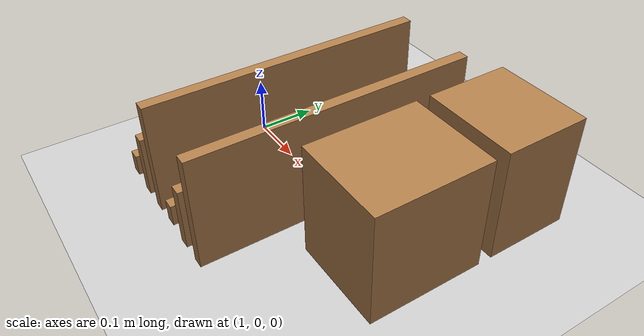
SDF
<sdf version="1.5">
 <world name="default">
  <plugin name="gazebo_ros_state" filename="libgazebo_ros_state.so">
   <ros>
    <namespace>/gazebo_state</namespace>
    <argument>--ros-args --remap model_states:=model_states_demo</argument>
    <argument>--ros-args --remap link_states:=link_states_demo</argument>
   </ros>
   <update_rate>50.0</update_rate>
  </plugin>
  <plugin name="ros_link_attacher_plugin" filename="libgazebo_ros_link_attacher_plugin.so"/>
  <light name="sun" type="directional">
   <pose>0 0 10 0 -0 0</pose>
   <diffuse>0.8 0.8 0.8 1</diffuse>
   <specular>0.2 0.2 0.2 1</specular>
   <attenuation>
    <range>1000</range>
    <constant>0.9</constant>
    <linear>0.01</linear>
    <quadratic>0.001</quadratic>
   </attenuation>
   <direction>-0.5 0.1 -0.9</direction>
   <spot><inner_angle>0</inner_angle><outer_angle>0</outer_angle><falloff>0</falloff></spot>
  </light>
  <model name="wall_0">
   <pose>1.0 0 .025 0 0 0</pose>
   <link name="link">
    <collision name="collision"><geometry><box><size>0.02 0.5 0.038</size></box></geometry></collision>
    <visual name="visual">
     <geometry><box><size>0.02 0.5 0.038</size></box></geometry>
     <material>
      <script><uri>file://media/materials/scripts/gazebo.material</uri><name>Gazebo/Wood</name></script>
     </material>
    </visual>
   </link>
  </model>
  <model name="wall_1">
   <pose>1.05 0 .05 0 0 0</pose>
   <link name="link">
    <collision name="collision"><geometry><box><size>0.02 0.5 0.119</size></box></geometry></collision>
    <visual name="visual">
     <geometry><box><size>0.02 0.5 0.119</size></box></geometry>
     <material>
      <script><uri>file://media/materials/scripts/gazebo.material</uri><name>Gazebo/Wood</name></script>
     </material>
    </visual>
   </link>
  </model>
  <model name="wall_2">
   <pose>1.1 0 .1 0 0 0</pose>
   <link name="link">
    <collision name="collision"><geometry><box><size>0.02 0.5 0.2</size></box></geometry></collision>
    <visual name="visual">
     <geometry><box><size>0.02 0.5 0.2</size></box></geometry>
     <material>
      <script><uri>file://media/materials/scripts/gazebo.material</uri><name>Gazebo/Wood</name></script>
     </material>
    </visual>
   </link>
  </model>
  <model name="wall_3">
   <pose>1.15 0 .025 0 0 0</pose>
   <link name="link">
    <collision name="collision"><geometry><box><size>0.02 0.5 0.038</size></box></geometry></collision>
    <visual name="visual">
     <geometry><box><size>0.02 0.5 0.038</size></box></geometry>
     <material>
      <script><uri>file://media/materials/scripts/gazebo.material</uri><name>Gazebo/Wood</name></script>
     </material>
    </visual>
   </link>
  </model>
  <model name="wall_4">
   <pose>1.2 0 .05 0 0 0</pose>
   <link name="link">
    <collision name="collision"><geometry><box><size>0.02 0.5 0.119</size></box></geometry></collision>
    <visual name="visual">
     <geometry><box><size>0.02 0.5 0.119</size></box></geometry>
     <material>
      <script><uri>file://media/materials/scripts/gazebo.material</uri><name>Gazebo/Wood</name></script>
     </material>
    </visual>
   </link>
  </model>
  <model name="wall_5">
   <pose>1.25 0 .1 0 0 0</pose>
   <link name="link">
    <collision name="collision"><geometry><box><size>0.02 0.5 0.2</size></box></geometry></collision>
    <visual name="visual">
     <geometry><box><size>0.02 0.5 0.2</size></box></geometry>
     <material>
      <script><uri>file://media/materials/scripts/gazebo.material</uri><name>Gazebo/Wood</name></script>
     </material>
    </visual>
   </link>
  </model>
  <model name="block_0">
   <pose>1.4 0.2 .1 0 0 0</pose>
   <link name="link">
    <collision name="collision"><geometry><box><size>0.17 0.15 0.2</size></box></geometry></collision>
    <visual name="visual">
     <geometry><box><size>0.17 0.15 0.2</size></box></geometry>
     <material>
      <script><uri>file://media/materials/scripts/gazebo.material</uri><name>Gazebo/Wood</name></script>
     </material>
    </visual>
   </link>
  </model>
  <model name="block_1">
   <pose>1.4 0 .1 0 0 0</pose>
   <link name="link">
    <collision name="collision"><geometry><box><size>0.17 0.2 0.2</size></box></geometry></collision>
    <visual name="visual">
     <geometry><box><size>0.17 0.2 0.2</size></box></geometry>
     <material>
      <script><uri>file://media/materials/scripts/gazebo.material</uri><name>Gazebo/Wood</name></script>
     </material>
    </visual>
   </link>
  </model>
  <model name="ground_plane">
   <static>1</static>
   <link name="link">
    <collision name="collision">
     <geometry><plane><normal>0 0 1</normal><size>100 100</size></plane></geometry>
     <surface><friction><ode><mu>100</mu><mu2>50</mu2></ode></friction></surface>
    </collision>
    <visual name="visual">
     <cast_shadows>0</cast_shadows>
     <geometry><plane><normal>0 0 1</normal><size>100 100</size></plane></geometry>
     <material>
      <script><uri>file://media/materials/scripts/gazebo.material</uri><name>Gazebo/Grey</name></script>
     </material>
    </visual>
   </link>
  </model>
  <gravity>0 0 -9.8</gravity>
  <magnetic_field>6e-06 2.3e-05 -4.2e-05</magnetic_field>
  <atmosphere type="adiabatic"/>
  <physics type="ode">
   <gravity>0.000000 0.000000 -9.810000</gravity>
   <ode>
    <solver><type>quick</type><iters>20</iters><sor>0.2500000</sor></solver>
    <constraints>
     <cfm>0.000000</cfm>
     <erp>0.200000</erp>
     <contact_max_correcting_vel>100.000000</contact_max_correcting_vel>
     <contact_surface_layer>0.000000</contact_surface_layer>
    </constraints>
   </ode>
   <real_time_update_rate>1000.000000</real_time_update_rate>
   <max_step_size>0.001000</max_step_size>
   <real_time_factor>1.000000</real_time_factor>
   <max_contacts>20</max_contacts>
  </physics>
  <scene><ambient>0.5 0.5 0.5 1</ambient><background>0.7 0.7 0.7 1</background><shadows>0</shadows></scene>
  <audio><device>default</device></audio>
  <spherical_coordinates>
   <surface_model>EARTH_WGS84</surface_model>
   <latitude_deg>0</latitude_deg>
   <longitude_deg>0</longitude_deg>
   <elevation>0</elevation>
   <heading_deg>0</heading_deg>
  </spherical_coordinates>
 </world>
</sdf>
